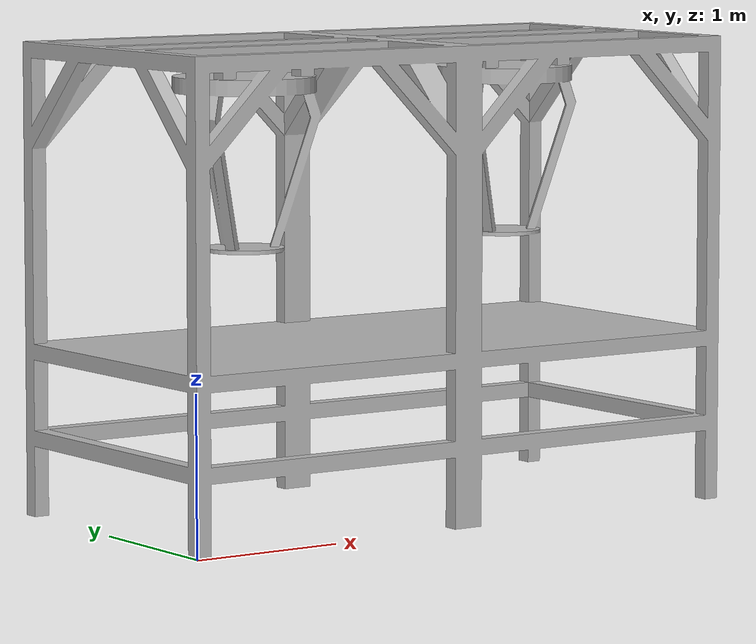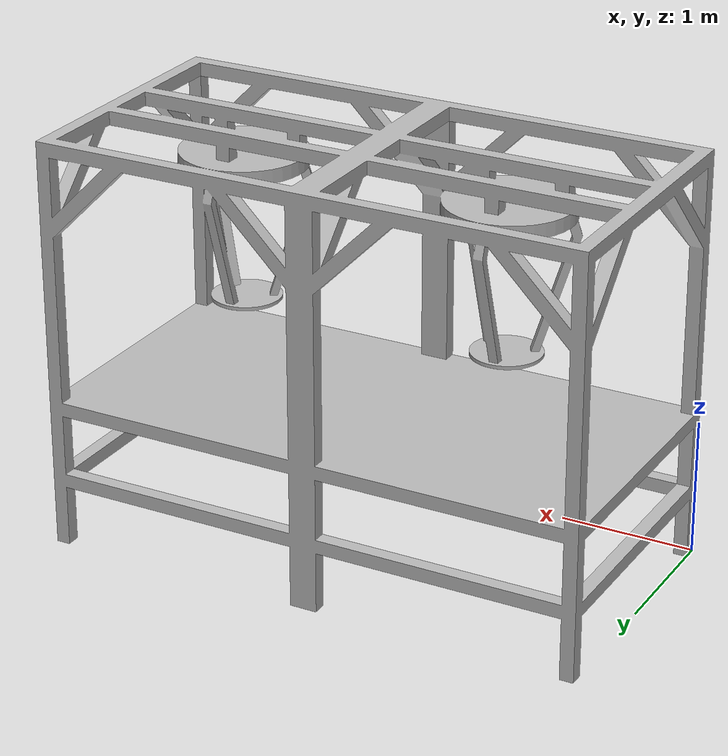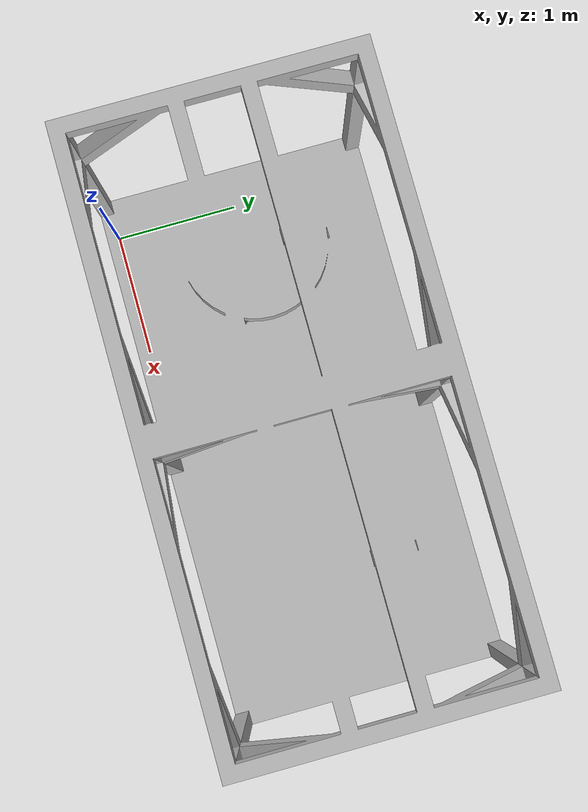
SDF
<?xml version="1.0" ?>
<sdf version="1.6">
  <model name="delta_robot">
    <static>true</static>
    <link name="base_link">

      <visual name="visual">
        <geometry>
          <mesh>
            <uri>model://delta_robot/meshes/crta_delta_robot.STL</uri>
            <scale>0.001 0.001 0.001</scale>
          </mesh>
        </geometry>
      </visual>

      <collision name="collision">
       <pose>2 1 1.5 0 0 0</pose>
        <geometry>
         <box>
          <size>4 2 3</size> <!-- Prilagodi veličini stolca -->
         </box>
        </geometry>
       </collision>

    </link>
  </model>
</sdf>
